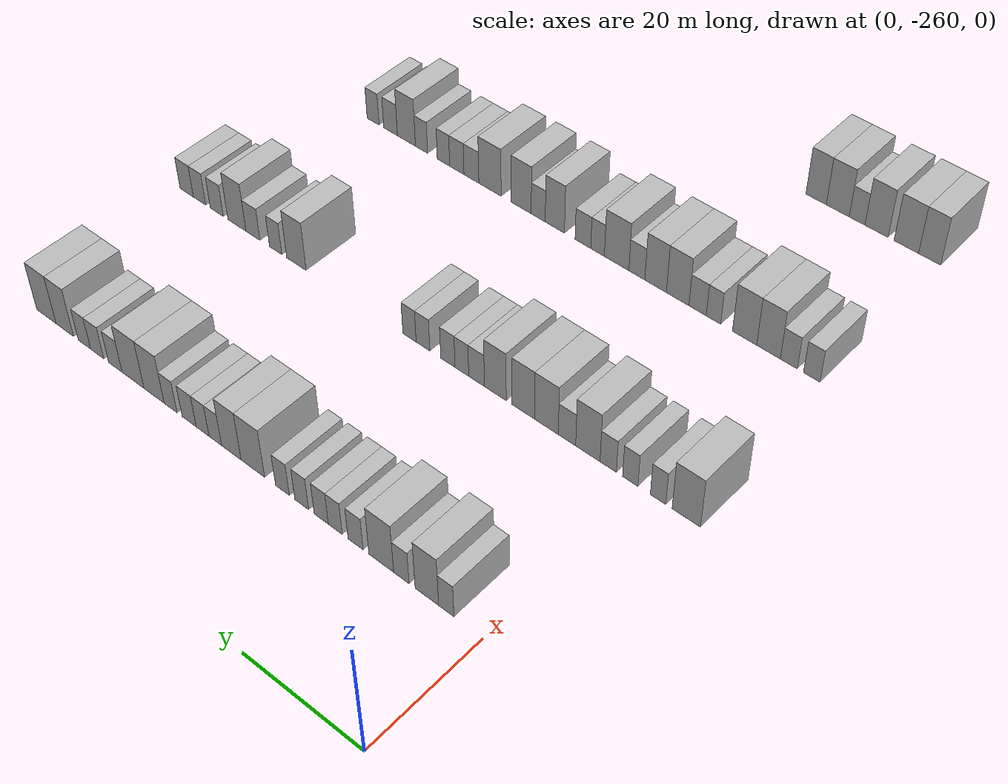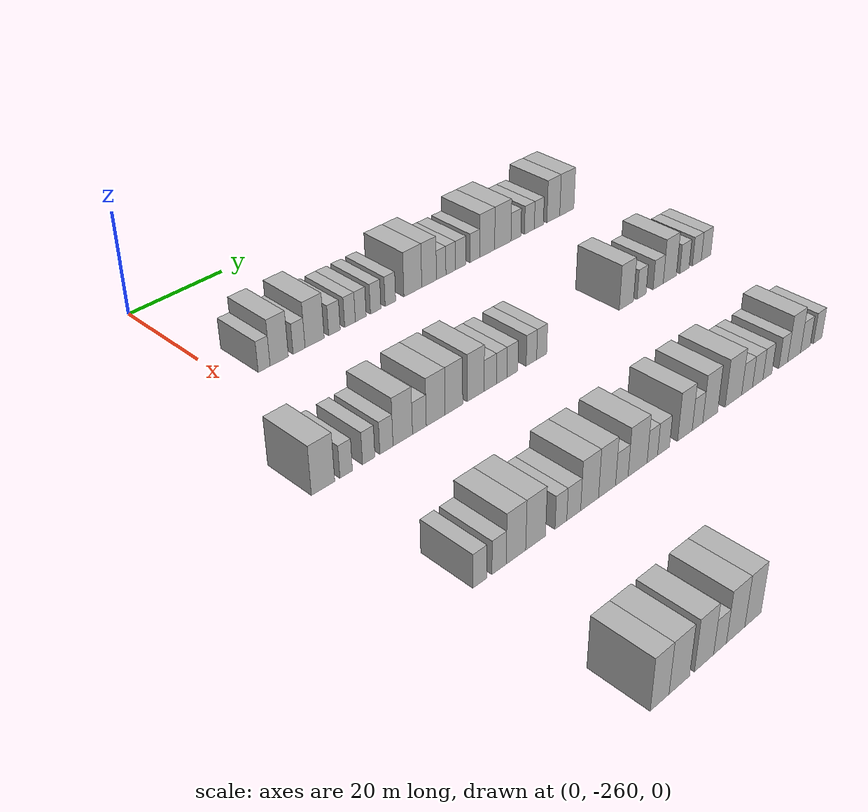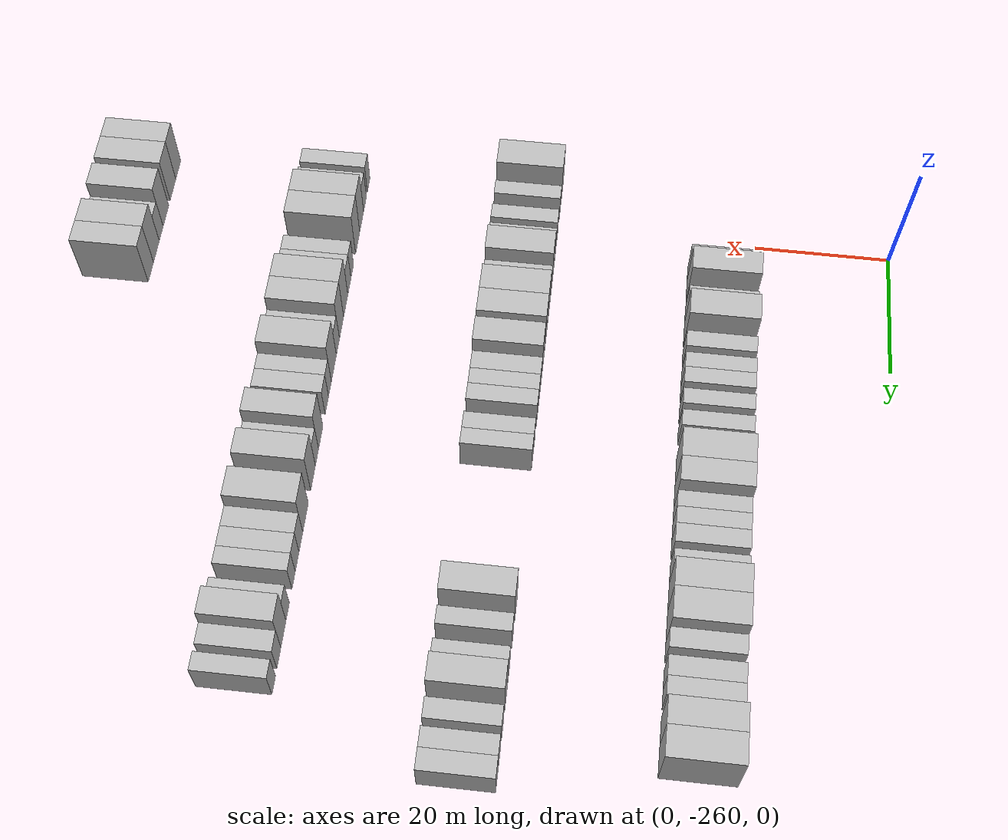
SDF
<sdf version="1.6">
 <world name="default">
  <model name="building_51">
   <static>1</static>
   <pose>25.0000 -254.0717 0 0.000000 0.000000 0.000000</pose>
   <link name="link">
    <pose>0 0 3.00 0 0 0</pose>
    <collision name="collision"><geometry><box><size>10.0000 2.4786 6.0000</size></box></geometry></collision>
    <visual name="visual">
     <cast_shadows>0</cast_shadows>
     <geometry><box><size>10.0000 2.4786 6.0000</size></box></geometry>
     <material>
      <script>
       <uri>model://HANNAS_wall/materials/scripts</uri>
       <uri>model://HANNAS_wall/materials/textures</uri>
       <name>vrc/HANNAS_wall</name>
      </script>
     </material>
    </visual>
   </link>
  </model>
  <model name="building_52">
   <static>1</static>
   <pose>25.0000 -250.9036 0 0.000000 0.000000 0.000000</pose>
   <link name="link">
    <pose>0 0 4.50 0 0 0</pose>
    <collision name="collision"><geometry><box><size>10.0000 3.8577 9.0000</size></box></geometry></collision>
    <visual name="visual">
     <cast_shadows>0</cast_shadows>
     <geometry><box><size>10.0000 3.8577 9.0000</size></box></geometry>
     <material>
      <script>
       <uri>model://HANNAS_wall/materials/scripts</uri>
       <uri>model://HANNAS_wall/materials/textures</uri>
       <name>vrc/HANNAS_wall</name>
      </script>
     </material>
    </visual>
   </link>
  </model>
  <model name="building_53">
   <static>1</static>
   <pose>25.0000 -246.6851 0 0.000000 0.000000 0.000000</pose>
   <link name="link">
    <pose>0 0 3.00 0 0 0</pose>
    <collision name="collision"><geometry><box><size>10.0000 2.5791 6.0000</size></box></geometry></collision>
    <visual name="visual">
     <cast_shadows>0</cast_shadows>
     <geometry><box><size>10.0000 2.5791 6.0000</size></box></geometry>
     <material>
      <script>
       <uri>model://HANNAS_wall/materials/scripts</uri>
       <uri>model://HANNAS_wall/materials/textures</uri>
       <name>vrc/HANNAS_wall</name>
      </script>
     </material>
    </visual>
   </link>
  </model>
  <model name="building_54">
   <static>1</static>
   <pose>25.0000 -243.3000 0 0.000000 0.000000 0.000000</pose>
   <link name="link">
    <pose>0 0 4.50 0 0 0</pose>
    <collision name="collision"><geometry><box><size>10.0000 4.1912 9.0000</size></box></geometry></collision>
    <visual name="visual">
     <cast_shadows>0</cast_shadows>
     <geometry><box><size>10.0000 4.1912 9.0000</size></box></geometry>
     <material>
      <script>
       <uri>model://HANNAS_wall/materials/scripts</uri>
       <uri>model://HANNAS_wall/materials/textures</uri>
       <name>vrc/HANNAS_wall</name>
      </script>
     </material>
    </visual>
   </link>
  </model>
  <model name="building_55">
   <static>1</static>
   <pose>25.0000 -238.9054 0 0.000000 0.000000 0.000000</pose>
   <link name="link">
    <pose>0 0 3.00 0 0 0</pose>
    <collision name="collision"><geometry><box><size>10.0000 2.5979 6.0000</size></box></geometry></collision>
    <visual name="visual">
     <cast_shadows>0</cast_shadows>
     <geometry><box><size>10.0000 2.5979 6.0000</size></box></geometry>
     <material>
      <script>
       <uri>model://HANNAS_wall/materials/scripts</uri>
       <uri>model://HANNAS_wall/materials/textures</uri>
       <name>vrc/HANNAS_wall</name>
      </script>
     </material>
    </visual>
   </link>
  </model>
  <model name="building_56">
   <static>1</static>
   <pose>25.0000 -235.3867 0 0.000000 0.000000 0.000000</pose>
   <link name="link">
    <pose>0 0 3.00 0 0 0</pose>
    <collision name="collision"><geometry><box><size>10.0000 2.4397 6.0000</size></box></geometry></collision>
    <visual name="visual">
     <cast_shadows>0</cast_shadows>
     <geometry><box><size>10.0000 2.4397 6.0000</size></box></geometry>
     <material>
      <script>
       <uri>model://HANNAS_wall/materials/scripts</uri>
       <uri>model://HANNAS_wall/materials/textures</uri>
       <name>vrc/HANNAS_wall</name>
      </script>
     </material>
    </visual>
   </link>
  </model>
  <model name="building_57">
   <static>1</static>
   <pose>25.0000 -232.9198 0 0.000000 0.000000 0.000000</pose>
   <link name="link">
    <pose>0 0 3.00 0 0 0</pose>
    <collision name="collision"><geometry><box><size>10.0000 2.4940 6.0000</size></box></geometry></collision>
    <visual name="visual">
     <cast_shadows>0</cast_shadows>
     <geometry><box><size>10.0000 2.4940 6.0000</size></box></geometry>
     <material>
      <script>
       <uri>model://HANNAS_wall/materials/scripts</uri>
       <uri>model://HANNAS_wall/materials/textures</uri>
       <name>vrc/HANNAS_wall</name>
      </script>
     </material>
    </visual>
   </link>
  </model>
  <model name="building_58">
   <static>1</static>
   <pose>25.0000 -229.4423 0 0.000000 0.000000 0.000000</pose>
   <link name="link">
    <pose>0 0 3.00 0 0 0</pose>
    <collision name="collision"><geometry><box><size>10.0000 2.4610 6.0000</size></box></geometry></collision>
    <visual name="visual">
     <cast_shadows>0</cast_shadows>
     <geometry><box><size>10.0000 2.4610 6.0000</size></box></geometry>
     <material>
      <script>
       <uri>model://HANNAS_wall/materials/scripts</uri>
       <uri>model://HANNAS_wall/materials/textures</uri>
       <name>vrc/HANNAS_wall</name>
      </script>
     </material>
    </visual>
   </link>
  </model>
  <model name="building_59">
   <static>1</static>
   <pose>25.0000 -225.9578 0 0.000000 0.000000 0.000000</pose>
   <link name="link">
    <pose>0 0 3.00 0 0 0</pose>
    <collision name="collision"><geometry><box><size>10.0000 2.5080 6.0000</size></box></geometry></collision>
    <visual name="visual">
     <cast_shadows>0</cast_shadows>
     <geometry><box><size>10.0000 2.5080 6.0000</size></box></geometry>
     <material>
      <script>
       <uri>model://HANNAS_wall/materials/scripts</uri>
       <uri>model://HANNAS_wall/materials/textures</uri>
       <name>vrc/HANNAS_wall</name>
      </script>
     </material>
    </visual>
   </link>
  </model>
  <model name="building_60">
   <static>1</static>
   <pose>25.0000 -220.5133 0 0.000000 0.000000 0.000000</pose>
   <link name="link">
    <pose>0 0 4.50 0 0 0</pose>
    <collision name="collision"><geometry><box><size>10.0000 4.3810 9.0000</size></box></geometry></collision>
    <visual name="visual">
     <cast_shadows>0</cast_shadows>
     <geometry><box><size>10.0000 4.3810 9.0000</size></box></geometry>
     <material>
      <script>
       <uri>model://HANNAS_wall/materials/scripts</uri>
       <uri>model://HANNAS_wall/materials/textures</uri>
       <name>vrc/HANNAS_wall</name>
      </script>
     </material>
    </visual>
   </link>
  </model>
  <model name="building_61">
   <static>1</static>
   <pose>25.0000 -216.4839 0 0.000000 0.000000 0.000000</pose>
   <link name="link">
    <pose>0 0 4.50 0 0 0</pose>
    <collision name="collision"><geometry><box><size>10.0000 3.6778 9.0000</size></box></geometry></collision>
    <visual name="visual">
     <cast_shadows>0</cast_shadows>
     <geometry><box><size>10.0000 3.6778 9.0000</size></box></geometry>
     <material>
      <script>
       <uri>model://HANNAS_wall/materials/scripts</uri>
       <uri>model://HANNAS_wall/materials/textures</uri>
       <name>vrc/HANNAS_wall</name>
      </script>
     </material>
    </visual>
   </link>
  </model>
  <model name="building_62">
   <static>1</static>
   <pose>25.0000 -213.4449 0 0.000000 0.000000 0.000000</pose>
   <link name="link">
    <pose>0 0 3.00 0 0 0</pose>
    <collision name="collision"><geometry><box><size>10.0000 2.4002 6.0000</size></box></geometry></collision>
    <visual name="visual">
     <cast_shadows>0</cast_shadows>
     <geometry><box><size>10.0000 2.4002 6.0000</size></box></geometry>
     <material>
      <script>
       <uri>model://HANNAS_wall/materials/scripts</uri>
       <uri>model://HANNAS_wall/materials/textures</uri>
       <name>vrc/HANNAS_wall</name>
      </script>
     </material>
    </visual>
   </link>
  </model>
  <model name="building_63">
   <static>1</static>
   <pose>25.0000 -211.0081 0 0.000000 0.000000 0.000000</pose>
   <link name="link">
    <pose>0 0 3.00 0 0 0</pose>
    <collision name="collision"><geometry><box><size>10.0000 2.4734 6.0000</size></box></geometry></collision>
    <visual name="visual">
     <cast_shadows>0</cast_shadows>
     <geometry><box><size>10.0000 2.4734 6.0000</size></box></geometry>
     <material>
      <script>
       <uri>model://HANNAS_wall/materials/scripts</uri>
       <uri>model://HANNAS_wall/materials/textures</uri>
       <name>vrc/HANNAS_wall</name>
      </script>
     </material>
    </visual>
   </link>
  </model>
  <model name="building_64">
   <static>1</static>
   <pose>25.0000 -208.3993 0 0.000000 0.000000 0.000000</pose>
   <link name="link">
    <pose>0 0 3.00 0 0 0</pose>
    <collision name="collision"><geometry><box><size>10.0000 2.7443 6.0000</size></box></geometry></collision>
    <visual name="visual">
     <cast_shadows>0</cast_shadows>
     <geometry><box><size>10.0000 2.7443 6.0000</size></box></geometry>
     <material>
      <script>
       <uri>model://HANNAS_wall/materials/scripts</uri>
       <uri>model://HANNAS_wall/materials/textures</uri>
       <name>vrc/HANNAS_wall</name>
      </script>
     </material>
    </visual>
   </link>
  </model>
  <model name="building_65">
   <static>1</static>
   <pose>25.0000 -204.7538 0 0.000000 0.000000 0.000000</pose>
   <link name="link">
    <pose>0 0 3.00 0 0 0</pose>
    <collision name="collision"><geometry><box><size>10.0000 2.5466 6.0000</size></box></geometry></collision>
    <visual name="visual">
     <cast_shadows>0</cast_shadows>
     <geometry><box><size>10.0000 2.5466 6.0000</size></box></geometry>
     <material>
      <script>
       <uri>model://HANNAS_wall/materials/scripts</uri>
       <uri>model://HANNAS_wall/materials/textures</uri>
       <name>vrc/HANNAS_wall</name>
      </script>
     </material>
    </visual>
   </link>
  </model>
  <model name="building_66">
   <static>1</static>
   <pose>25.0000 -201.4581 0 0.000000 0.000000 0.000000</pose>
   <link name="link">
    <pose>0 0 4.50 0 0 0</pose>
    <collision name="collision"><geometry><box><size>10.0000 4.0447 9.0000</size></box></geometry></collision>
    <visual name="visual">
     <cast_shadows>0</cast_shadows>
     <geometry><box><size>10.0000 4.0447 9.0000</size></box></geometry>
     <material>
      <script>
       <uri>model://HANNAS_wall/materials/scripts</uri>
       <uri>model://HANNAS_wall/materials/textures</uri>
       <name>vrc/HANNAS_wall</name>
      </script>
     </material>
    </visual>
   </link>
  </model>
  <model name="building_67">
   <static>1</static>
   <pose>25.0000 -197.2024 0 0.000000 0.000000 0.000000</pose>
   <link name="link">
    <pose>0 0 4.50 0 0 0</pose>
    <collision name="collision"><geometry><box><size>10.0000 4.4668 9.0000</size></box></geometry></collision>
    <visual name="visual">
     <cast_shadows>0</cast_shadows>
     <geometry><box><size>10.0000 4.4668 9.0000</size></box></geometry>
     <material>
      <script>
       <uri>model://HANNAS_wall/materials/scripts</uri>
       <uri>model://HANNAS_wall/materials/textures</uri>
       <name>vrc/HANNAS_wall</name>
      </script>
     </material>
    </visual>
   </link>
  </model>
  <model name="building_68">
   <static>1</static>
   <pose>25.0000 -193.5840 0 0.000000 0.000000 0.000000</pose>
   <link name="link">
    <pose>0 0 3.00 0 0 0</pose>
    <collision name="collision"><geometry><box><size>10.0000 2.7699 6.0000</size></box></geometry></collision>
    <visual name="visual">
     <cast_shadows>0</cast_shadows>
     <geometry><box><size>10.0000 2.7699 6.0000</size></box></geometry>
     <material>
      <script>
       <uri>model://HANNAS_wall/materials/scripts</uri>
       <uri>model://HANNAS_wall/materials/textures</uri>
       <name>vrc/HANNAS_wall</name>
      </script>
     </material>
    </visual>
   </link>
  </model>
  <model name="building_69">
   <static>1</static>
   <pose>25.0000 -189.8142 0 0.000000 0.000000 0.000000</pose>
   <link name="link">
    <pose>0 0 3.00 0 0 0</pose>
    <collision name="collision"><geometry><box><size>10.0000 2.7697 6.0000</size></box></geometry></collision>
    <visual name="visual">
     <cast_shadows>0</cast_shadows>
     <geometry><box><size>10.0000 2.7697 6.0000</size></box></geometry>
     <material>
      <script>
       <uri>model://HANNAS_wall/materials/scripts</uri>
       <uri>model://HANNAS_wall/materials/textures</uri>
       <name>vrc/HANNAS_wall</name>
      </script>
     </material>
    </visual>
   </link>
  </model>
  <model name="building_70">
   <static>1</static>
   <pose>25.0000 -187.1320 0 0.000000 0.000000 0.000000</pose>
   <link name="link">
    <pose>0 0 3.00 0 0 0</pose>
    <collision name="collision"><geometry><box><size>10.0000 2.5948 6.0000</size></box></geometry></collision>
    <visual name="visual">
     <cast_shadows>0</cast_shadows>
     <geometry><box><size>10.0000 2.5948 6.0000</size></box></geometry>
     <material>
      <script>
       <uri>model://HANNAS_wall/materials/scripts</uri>
       <uri>model://HANNAS_wall/materials/textures</uri>
       <name>vrc/HANNAS_wall</name>
      </script>
     </material>
    </visual>
   </link>
  </model>
  <model name="building_71">
   <static>1</static>
   <pose>25.0000 -182.9568 0 0.000000 0.000000 0.000000</pose>
   <link name="link">
    <pose>0 0 4.50 0 0 0</pose>
    <collision name="collision"><geometry><box><size>10.0000 3.7555 9.0000</size></box></geometry></collision>
    <visual name="visual">
     <cast_shadows>0</cast_shadows>
     <geometry><box><size>10.0000 3.7555 9.0000</size></box></geometry>
     <material>
      <script>
       <uri>model://HANNAS_wall/materials/scripts</uri>
       <uri>model://HANNAS_wall/materials/textures</uri>
       <name>vrc/HANNAS_wall</name>
      </script>
     </material>
    </visual>
   </link>
  </model>
  <model name="building_72">
   <static>1</static>
   <pose>25.0000 -178.9845 0 0.000000 0.000000 0.000000</pose>
   <link name="link">
    <pose>0 0 4.50 0 0 0</pose>
    <collision name="collision"><geometry><box><size>10.0000 4.1891 9.0000</size></box></geometry></collision>
    <visual name="visual">
     <cast_shadows>0</cast_shadows>
     <geometry><box><size>10.0000 4.1891 9.0000</size></box></geometry>
     <material>
      <script>
       <uri>model://HANNAS_wall/materials/scripts</uri>
       <uri>model://HANNAS_wall/materials/textures</uri>
       <name>vrc/HANNAS_wall</name>
      </script>
     </material>
    </visual>
   </link>
  </model>
  <model name="building_276">
   <static>1</static>
   <pose>55.0000 -267.1227 0 0.000000 0.000000 0.000000</pose>
   <link name="link">
    <pose>0 0 4.50 0 0 0</pose>
    <collision name="collision"><geometry><box><size>10.0000 4.4571 9.0000</size></box></geometry></collision>
    <visual name="visual">
     <cast_shadows>0</cast_shadows>
     <geometry><box><size>10.0000 4.4571 9.0000</size></box></geometry>
     <material>
      <script>
       <uri>model://HANNAS_wall/materials/scripts</uri>
       <uri>model://HANNAS_wall/materials/textures</uri>
       <name>vrc/HANNAS_wall</name>
      </script>
     </material>
    </visual>
   </link>
  </model>
  <model name="building_277">
   <static>1</static>
   <pose>55.0000 -262.6686 0 0.000000 0.000000 0.000000</pose>
   <link name="link">
    <pose>0 0 3.00 0 0 0</pose>
    <collision name="collision"><geometry><box><size>10.0000 2.4511 6.0000</size></box></geometry></collision>
    <visual name="visual">
     <cast_shadows>0</cast_shadows>
     <geometry><box><size>10.0000 2.4511 6.0000</size></box></geometry>
     <material>
      <script>
       <uri>model://HANNAS_wall/materials/scripts</uri>
       <uri>model://HANNAS_wall/materials/textures</uri>
       <name>vrc/HANNAS_wall</name>
      </script>
     </material>
    </visual>
   </link>
  </model>
  <model name="building_278">
   <static>1</static>
   <pose>55.0000 -258.1964 0 0.000000 0.000000 0.000000</pose>
   <link name="link">
    <pose>0 0 3.00 0 0 0</pose>
    <collision name="collision"><geometry><box><size>10.0000 2.4932 6.0000</size></box></geometry></collision>
    <visual name="visual">
     <cast_shadows>0</cast_shadows>
     <geometry><box><size>10.0000 2.4932 6.0000</size></box></geometry>
     <material>
      <script>
       <uri>model://HANNAS_wall/materials/scripts</uri>
       <uri>model://HANNAS_wall/materials/textures</uri>
       <name>vrc/HANNAS_wall</name>
      </script>
     </material>
    </visual>
   </link>
  </model>
  <model name="building_279">
   <static>1</static>
   <pose>55.0000 -254.6008 0 0.000000 0.000000 0.000000</pose>
   <link name="link">
    <pose>0 0 3.00 0 0 0</pose>
    <collision name="collision"><geometry><box><size>10.0000 2.6980 6.0000</size></box></geometry></collision>
    <visual name="visual">
     <cast_shadows>0</cast_shadows>
     <geometry><box><size>10.0000 2.6980 6.0000</size></box></geometry>
     <material>
      <script>
       <uri>model://HANNAS_wall/materials/scripts</uri>
       <uri>model://HANNAS_wall/materials/textures</uri>
       <name>vrc/HANNAS_wall</name>
      </script>
     </material>
    </visual>
   </link>
  </model>
  <model name="building_280">
   <static>1</static>
   <pose>55.0000 -251.2183 0 0.000000 0.000000 0.000000</pose>
   <link name="link">
    <pose>0 0 4.50 0 0 0</pose>
    <collision name="collision"><geometry><box><size>10.0000 4.0670 9.0000</size></box></geometry></collision>
    <visual name="visual">
     <cast_shadows>0</cast_shadows>
     <geometry><box><size>10.0000 4.0670 9.0000</size></box></geometry>
     <material>
      <script>
       <uri>model://HANNAS_wall/materials/scripts</uri>
       <uri>model://HANNAS_wall/materials/textures</uri>
       <name>vrc/HANNAS_wall</name>
      </script>
     </material>
    </visual>
   </link>
  </model>
  <model name="building_281">
   <static>1</static>
   <pose>55.0000 -247.7169 0 0.000000 0.000000 0.000000</pose>
   <link name="link">
    <pose>0 0 3.00 0 0 0</pose>
    <collision name="collision"><geometry><box><size>10.0000 2.9358 6.0000</size></box></geometry></collision>
    <visual name="visual">
     <cast_shadows>0</cast_shadows>
     <geometry><box><size>10.0000 2.9358 6.0000</size></box></geometry>
     <material>
      <script>
       <uri>model://HANNAS_wall/materials/scripts</uri>
       <uri>model://HANNAS_wall/materials/textures</uri>
       <name>vrc/HANNAS_wall</name>
      </script>
     </material>
    </visual>
   </link>
  </model>
  <model name="building_282">
   <static>1</static>
   <pose>55.0000 -244.2070 0 0.000000 0.000000 0.000000</pose>
   <link name="link">
    <pose>0 0 4.50 0 0 0</pose>
    <collision name="collision"><geometry><box><size>10.0000 4.0842 9.0000</size></box></geometry></collision>
    <visual name="visual">
     <cast_shadows>0</cast_shadows>
     <geometry><box><size>10.0000 4.0842 9.0000</size></box></geometry>
     <material>
      <script>
       <uri>model://HANNAS_wall/materials/scripts</uri>
       <uri>model://HANNAS_wall/materials/textures</uri>
       <name>vrc/HANNAS_wall</name>
      </script>
     </material>
    </visual>
   </link>
  </model>
  <model name="building_283">
   <static>1</static>
   <pose>55.0000 -240.2123 0 0.000000 0.000000 0.000000</pose>
   <link name="link">
    <pose>0 0 4.50 0 0 0</pose>
    <collision name="collision"><geometry><box><size>10.0000 3.9052 9.0000</size></box></geometry></collision>
    <visual name="visual">
     <cast_shadows>0</cast_shadows>
     <geometry><box><size>10.0000 3.9052 9.0000</size></box></geometry>
     <material>
      <script>
       <uri>model://HANNAS_wall/materials/scripts</uri>
       <uri>model://HANNAS_wall/materials/textures</uri>
       <name>vrc/HANNAS_wall</name>
      </script>
     </material>
    </visual>
   </link>
  </model>
  <model name="building_284">
   <static>1</static>
   <pose>55.0000 -235.3252 0 0.000000 0.000000 0.000000</pose>
   <link name="link">
    <pose>0 0 4.50 0 0 0</pose>
    <collision name="collision"><geometry><box><size>10.0000 3.8689 9.0000</size></box></geometry></collision>
    <visual name="visual">
     <cast_shadows>0</cast_shadows>
     <geometry><box><size>10.0000 3.8689 9.0000</size></box></geometry>
     <material>
      <script>
       <uri>model://HANNAS_wall/materials/scripts</uri>
       <uri>model://HANNAS_wall/materials/textures</uri>
       <name>vrc/HANNAS_wall</name>
      </script>
     </material>
    </visual>
   </link>
  </model>
  <model name="building_285">
   <static>1</static>
   <pose>55.0000 -231.9789 0 0.000000 0.000000 0.000000</pose>
   <link name="link">
    <pose>0 0 3.00 0 0 0</pose>
    <collision name="collision"><geometry><box><size>10.0000 2.8236 6.0000</size></box></geometry></collision>
    <visual name="visual">
     <cast_shadows>0</cast_shadows>
     <geometry><box><size>10.0000 2.8236 6.0000</size></box></geometry>
     <material>
      <script>
       <uri>model://HANNAS_wall/materials/scripts</uri>
       <uri>model://HANNAS_wall/materials/textures</uri>
       <name>vrc/HANNAS_wall</name>
      </script>
     </material>
    </visual>
   </link>
  </model>
  <model name="building_286">
   <static>1</static>
   <pose>55.0000 -229.3290 0 0.000000 0.000000 0.000000</pose>
   <link name="link">
    <pose>0 0 3.00 0 0 0</pose>
    <collision name="collision"><geometry><box><size>10.0000 2.4763 6.0000</size></box></geometry></collision>
    <visual name="visual">
     <cast_shadows>0</cast_shadows>
     <geometry><box><size>10.0000 2.4763 6.0000</size></box></geometry>
     <material>
      <script>
       <uri>model://HANNAS_wall/materials/scripts</uri>
       <uri>model://HANNAS_wall/materials/textures</uri>
       <name>vrc/HANNAS_wall</name>
      </script>
     </material>
    </visual>
   </link>
  </model>
  <model name="building_287">
   <static>1</static>
   <pose>55.0000 -226.7826 0 0.000000 0.000000 0.000000</pose>
   <link name="link">
    <pose>0 0 3.00 0 0 0</pose>
    <collision name="collision"><geometry><box><size>10.0000 2.6165 6.0000</size></box></geometry></collision>
    <visual name="visual">
     <cast_shadows>0</cast_shadows>
     <geometry><box><size>10.0000 2.6165 6.0000</size></box></geometry>
     <material>
      <script>
       <uri>model://HANNAS_wall/materials/scripts</uri>
       <uri>model://HANNAS_wall/materials/textures</uri>
       <name>vrc/HANNAS_wall</name>
      </script>
     </material>
    </visual>
   </link>
  </model>
  <model name="building_288">
   <static>1</static>
   <pose>55.0000 -222.1967 0 0.000000 0.000000 0.000000</pose>
   <link name="link">
    <pose>0 0 3.00 0 0 0</pose>
    <collision name="collision"><geometry><box><size>10.0000 2.5551 6.0000</size></box></geometry></collision>
    <visual name="visual">
     <cast_shadows>0</cast_shadows>
     <geometry><box><size>10.0000 2.5551 6.0000</size></box></geometry>
     <material>
      <script>
       <uri>model://HANNAS_wall/materials/scripts</uri>
       <uri>model://HANNAS_wall/materials/textures</uri>
       <name>vrc/HANNAS_wall</name>
      </script>
     </material>
    </visual>
   </link>
  </model>
  <model name="building_289">
   <static>1</static>
   <pose>55.0000 -219.6737 0 0.000000 0.000000 0.000000</pose>
   <link name="link">
    <pose>0 0 3.00 0 0 0</pose>
    <collision name="collision"><geometry><box><size>10.0000 2.4909 6.0000</size></box></geometry></collision>
    <visual name="visual">
     <cast_shadows>0</cast_shadows>
     <geometry><box><size>10.0000 2.4909 6.0000</size></box></geometry>
     <material>
      <script>
       <uri>model://HANNAS_wall/materials/scripts</uri>
       <uri>model://HANNAS_wall/materials/textures</uri>
       <name>vrc/HANNAS_wall</name>
      </script>
     </material>
    </visual>
   </link>
  </model>
  <model name="building_290">
   <static>1</static>
   <pose>55.0000 -197.5085 0 0.000000 0.000000 0.000000</pose>
   <link name="link">
    <pose>0 0 4.50 0 0 0</pose>
    <collision name="collision"><geometry><box><size>10.0000 3.9465 9.0000</size></box></geometry></collision>
    <visual name="visual">
     <cast_shadows>0</cast_shadows>
     <geometry><box><size>10.0000 3.9465 9.0000</size></box></geometry>
     <material>
      <script>
       <uri>model://HANNAS_wall/materials/scripts</uri>
       <uri>model://HANNAS_wall/materials/textures</uri>
       <name>vrc/HANNAS_wall</name>
      </script>
     </material>
    </visual>
   </link>
  </model>
  <model name="building_291">
   <static>1</static>
   <pose>55.0000 -193.2671 0 0.000000 0.000000 0.000000</pose>
   <link name="link">
    <pose>0 0 3.00 0 0 0</pose>
    <collision name="collision"><geometry><box><size>10.0000 2.5364 6.0000</size></box></geometry></collision>
    <visual name="visual">
     <cast_shadows>0</cast_shadows>
     <geometry><box><size>10.0000 2.5364 6.0000</size></box></geometry>
     <material>
      <script>
       <uri>model://HANNAS_wall/materials/scripts</uri>
       <uri>model://HANNAS_wall/materials/textures</uri>
       <name>vrc/HANNAS_wall</name>
      </script>
     </material>
    </visual>
   </link>
  </model>
  <model name="building_292">
   <static>1</static>
   <pose>55.0000 -188.5301 0 0.000000 0.000000 0.000000</pose>
   <link name="link">
    <pose>0 0 3.00 0 0 0</pose>
    <collision name="collision"><geometry><box><size>10.0000 2.9375 6.0000</size></box></geometry></collision>
    <visual name="visual">
     <cast_shadows>0</cast_shadows>
     <geometry><box><size>10.0000 2.9375 6.0000</size></box></geometry>
     <material>
      <script>
       <uri>model://HANNAS_wall/materials/scripts</uri>
       <uri>model://HANNAS_wall/materials/textures</uri>
       <name>vrc/HANNAS_wall</name>
      </script>
     </material>
    </visual>
   </link>
  </model>
  <model name="building_293">
   <static>1</static>
   <pose>55.0000 -185.1422 0 0.000000 0.000000 0.000000</pose>
   <link name="link">
    <pose>0 0 4.50 0 0 0</pose>
    <collision name="collision"><geometry><box><size>10.0000 3.8382 9.0000</size></box></geometry></collision>
    <visual name="visual">
     <cast_shadows>0</cast_shadows>
     <geometry><box><size>10.0000 3.8382 9.0000</size></box></geometry>
     <material>
      <script>
       <uri>model://HANNAS_wall/materials/scripts</uri>
       <uri>model://HANNAS_wall/materials/textures</uri>
       <name>vrc/HANNAS_wall</name>
      </script>
     </material>
    </visual>
   </link>
  </model>
  <model name="building_294">
   <static>1</static>
   <pose>55.0000 -180.8248 0 0.000000 0.000000 0.000000</pose>
   <link name="link">
    <pose>0 0 3.00 0 0 0</pose>
    <collision name="collision"><geometry><box><size>10.0000 2.7966 6.0000</size></box></geometry></collision>
    <visual name="visual">
     <cast_shadows>0</cast_shadows>
     <geometry><box><size>10.0000 2.7966 6.0000</size></box></geometry>
     <material>
      <script>
       <uri>model://HANNAS_wall/materials/scripts</uri>
       <uri>model://HANNAS_wall/materials/textures</uri>
       <name>vrc/HANNAS_wall</name>
      </script>
     </material>
    </visual>
   </link>
  </model>
  <model name="building_295">
   <static>1</static>
   <pose>55.0000 -177.0702 0 0.000000 0.000000 0.000000</pose>
   <link name="link">
    <pose>0 0 3.00 0 0 0</pose>
    <collision name="collision"><geometry><box><size>10.0000 2.7127 6.0000</size></box></geometry></collision>
    <visual name="visual">
     <cast_shadows>0</cast_shadows>
     <geometry><box><size>10.0000 2.7127 6.0000</size></box></geometry>
     <material>
      <script>
       <uri>model://HANNAS_wall/materials/scripts</uri>
       <uri>model://HANNAS_wall/materials/textures</uri>
       <name>vrc/HANNAS_wall</name>
      </script>
     </material>
    </visual>
   </link>
  </model>
  <model name="building_296">
   <static>1</static>
   <pose>55.0000 -174.2528 0 0.000000 0.000000 0.000000</pose>
   <link name="link">
    <pose>0 0 3.00 0 0 0</pose>
    <collision name="collision"><geometry><box><size>10.0000 2.9220 6.0000</size></box></geometry></collision>
    <visual name="visual">
     <cast_shadows>0</cast_shadows>
     <geometry><box><size>10.0000 2.9220 6.0000</size></box></geometry>
     <material>
      <script>
       <uri>model://HANNAS_wall/materials/scripts</uri>
       <uri>model://HANNAS_wall/materials/textures</uri>
       <name>vrc/HANNAS_wall</name>
      </script>
     </material>
    </visual>
   </link>
  </model>
  <model name="building_513">
   <static>1</static>
   <pose>85.0000 -265.3450 0 0.000000 0.000000 0.000000</pose>
   <link name="link">
    <pose>0 0 3.00 0 0 0</pose>
    <collision name="collision"><geometry><box><size>10.0000 2.6621 6.0000</size></box></geometry></collision>
    <visual name="visual">
     <cast_shadows>0</cast_shadows>
     <geometry><box><size>10.0000 2.6621 6.0000</size></box></geometry>
     <material>
      <script>
       <uri>model://HANNAS_wall/materials/scripts</uri>
       <uri>model://HANNAS_wall/materials/textures</uri>
       <name>vrc/HANNAS_wall</name>
      </script>
     </material>
    </visual>
   </link>
  </model>
  <model name="building_514">
   <static>1</static>
   <pose>85.0000 -261.6181 0 0.000000 0.000000 0.000000</pose>
   <link name="link">
    <pose>0 0 3.00 0 0 0</pose>
    <collision name="collision"><geometry><box><size>10.0000 2.7918 6.0000</size></box></geometry></collision>
    <visual name="visual">
     <cast_shadows>0</cast_shadows>
     <geometry><box><size>10.0000 2.7918 6.0000</size></box></geometry>
     <material>
      <script>
       <uri>model://HANNAS_wall/materials/scripts</uri>
       <uri>model://HANNAS_wall/materials/textures</uri>
       <name>vrc/HANNAS_wall</name>
      </script>
     </material>
    </visual>
   </link>
  </model>
  <model name="building_515">
   <static>1</static>
   <pose>85.0000 -258.2617 0 0.000000 0.000000 0.000000</pose>
   <link name="link">
    <pose>0 0 4.50 0 0 0</pose>
    <collision name="collision"><geometry><box><size>10.0000 3.9209 9.0000</size></box></geometry></collision>
    <visual name="visual">
     <cast_shadows>0</cast_shadows>
     <geometry><box><size>10.0000 3.9209 9.0000</size></box></geometry>
     <material>
      <script>
       <uri>model://HANNAS_wall/materials/scripts</uri>
       <uri>model://HANNAS_wall/materials/textures</uri>
       <name>vrc/HANNAS_wall</name>
      </script>
     </material>
    </visual>
   </link>
  </model>
  <model name="building_516">
   <static>1</static>
   <pose>85.0000 -254.2638 0 0.000000 0.000000 0.000000</pose>
   <link name="link">
    <pose>0 0 4.50 0 0 0</pose>
    <collision name="collision"><geometry><box><size>10.0000 4.0749 9.0000</size></box></geometry></collision>
    <visual name="visual">
     <cast_shadows>0</cast_shadows>
     <geometry><box><size>10.0000 4.0749 9.0000</size></box></geometry>
     <material>
      <script>
       <uri>model://HANNAS_wall/materials/scripts</uri>
       <uri>model://HANNAS_wall/materials/textures</uri>
       <name>vrc/HANNAS_wall</name>
      </script>
     </material>
    </visual>
   </link>
  </model>
  <model name="building_517">
   <static>1</static>
   <pose>85.0000 -248.9813 0 0.000000 0.000000 0.000000</pose>
   <link name="link">
    <pose>0 0 3.00 0 0 0</pose>
    <collision name="collision"><geometry><box><size>10.0000 2.4901 6.0000</size></box></geometry></collision>
    <visual name="visual">
     <cast_shadows>0</cast_shadows>
     <geometry><box><size>10.0000 2.4901 6.0000</size></box></geometry>
     <material>
      <script>
       <uri>model://HANNAS_wall/materials/scripts</uri>
       <uri>model://HANNAS_wall/materials/textures</uri>
       <name>vrc/HANNAS_wall</name>
      </script>
     </material>
    </visual>
   </link>
  </model>
  <model name="building_518">
   <static>1</static>
   <pose>85.0000 -246.2364 0 0.000000 0.000000 0.000000</pose>
   <link name="link">
    <pose>0 0 3.00 0 0 0</pose>
    <collision name="collision"><geometry><box><size>10.0000 2.9997 6.0000</size></box></geometry></collision>
    <visual name="visual">
     <cast_shadows>0</cast_shadows>
     <geometry><box><size>10.0000 2.9997 6.0000</size></box></geometry>
     <material>
      <script>
       <uri>model://HANNAS_wall/materials/scripts</uri>
       <uri>model://HANNAS_wall/materials/textures</uri>
       <name>vrc/HANNAS_wall</name>
      </script>
     </material>
    </visual>
   </link>
  </model>
  <model name="building_519">
   <static>1</static>
   <pose>85.0000 -242.7581 0 0.000000 0.000000 0.000000</pose>
   <link name="link">
    <pose>0 0 4.50 0 0 0</pose>
    <collision name="collision"><geometry><box><size>10.0000 3.9570 9.0000</size></box></geometry></collision>
    <visual name="visual">
     <cast_shadows>0</cast_shadows>
     <geometry><box><size>10.0000 3.9570 9.0000</size></box></geometry>
     <material>
      <script>
       <uri>model://HANNAS_wall/materials/scripts</uri>
       <uri>model://HANNAS_wall/materials/textures</uri>
       <name>vrc/HANNAS_wall</name>
      </script>
     </material>
    </visual>
   </link>
  </model>
  <model name="building_520">
   <static>1</static>
   <pose>85.0000 -238.8567 0 0.000000 0.000000 0.000000</pose>
   <link name="link">
    <pose>0 0 4.50 0 0 0</pose>
    <collision name="collision"><geometry><box><size>10.0000 3.8458 9.0000</size></box></geometry></collision>
    <visual name="visual">
     <cast_shadows>0</cast_shadows>
     <geometry><box><size>10.0000 3.8458 9.0000</size></box></geometry>
     <material>
      <script>
       <uri>model://HANNAS_wall/materials/scripts</uri>
       <uri>model://HANNAS_wall/materials/textures</uri>
       <name>vrc/HANNAS_wall</name>
      </script>
     </material>
    </visual>
   </link>
  </model>
  <model name="building_521">
   <static>1</static>
   <pose>85.0000 -235.4915 0 0.000000 0.000000 0.000000</pose>
   <link name="link">
    <pose>0 0 3.00 0 0 0</pose>
    <collision name="collision"><geometry><box><size>10.0000 2.8845 6.0000</size></box></geometry></collision>
    <visual name="visual">
     <cast_shadows>0</cast_shadows>
     <geometry><box><size>10.0000 2.8845 6.0000</size></box></geometry>
     <material>
      <script>
       <uri>model://HANNAS_wall/materials/scripts</uri>
       <uri>model://HANNAS_wall/materials/textures</uri>
       <name>vrc/HANNAS_wall</name>
      </script>
     </material>
    </visual>
   </link>
  </model>
  <model name="building_522">
   <static>1</static>
   <pose>85.0000 -231.8145 0 0.000000 0.000000 0.000000</pose>
   <link name="link">
    <pose>0 0 4.50 0 0 0</pose>
    <collision name="collision"><geometry><box><size>10.0000 4.4696 9.0000</size></box></geometry></collision>
    <visual name="visual">
     <cast_shadows>0</cast_shadows>
     <geometry><box><size>10.0000 4.4696 9.0000</size></box></geometry>
     <material>
      <script>
       <uri>model://HANNAS_wall/materials/scripts</uri>
       <uri>model://HANNAS_wall/materials/textures</uri>
       <name>vrc/HANNAS_wall</name>
      </script>
     </material>
    </visual>
   </link>
  </model>
  <model name="building_523">
   <static>1</static>
   <pose>85.0000 -228.3202 0 0.000000 0.000000 0.000000</pose>
   <link name="link">
    <pose>0 0 3.00 0 0 0</pose>
    <collision name="collision"><geometry><box><size>10.0000 2.5190 6.0000</size></box></geometry></collision>
    <visual name="visual">
     <cast_shadows>0</cast_shadows>
     <geometry><box><size>10.0000 2.5190 6.0000</size></box></geometry>
     <material>
      <script>
       <uri>model://HANNAS_wall/materials/scripts</uri>
       <uri>model://HANNAS_wall/materials/textures</uri>
       <name>vrc/HANNAS_wall</name>
      </script>
     </material>
    </visual>
   </link>
  </model>
  <model name="building_524">
   <static>1</static>
   <pose>85.0000 -225.6026 0 0.000000 0.000000 0.000000</pose>
   <link name="link">
    <pose>0 0 3.00 0 0 0</pose>
    <collision name="collision"><geometry><box><size>10.0000 2.9162 6.0000</size></box></geometry></collision>
    <visual name="visual">
     <cast_shadows>0</cast_shadows>
     <geometry><box><size>10.0000 2.9162 6.0000</size></box></geometry>
     <material>
      <script>
       <uri>model://HANNAS_wall/materials/scripts</uri>
       <uri>model://HANNAS_wall/materials/textures</uri>
       <name>vrc/HANNAS_wall</name>
      </script>
     </material>
    </visual>
   </link>
  </model>
  <model name="building_525">
   <static>1</static>
   <pose>85.0000 -220.3155 0 0.000000 0.000000 0.000000</pose>
   <link name="link">
    <pose>0 0 4.50 0 0 0</pose>
    <collision name="collision"><geometry><box><size>10.0000 3.6580 9.0000</size></box></geometry></collision>
    <visual name="visual">
     <cast_shadows>0</cast_shadows>
     <geometry><box><size>10.0000 3.6580 9.0000</size></box></geometry>
     <material>
      <script>
       <uri>model://HANNAS_wall/materials/scripts</uri>
       <uri>model://HANNAS_wall/materials/textures</uri>
       <name>vrc/HANNAS_wall</name>
      </script>
     </material>
    </visual>
   </link>
  </model>
  <model name="building_526">
   <static>1</static>
   <pose>85.0000 -217.1411 0 0.000000 0.000000 0.000000</pose>
   <link name="link">
    <pose>0 0 3.00 0 0 0</pose>
    <collision name="collision"><geometry><box><size>10.0000 2.6908 6.0000</size></box></geometry></collision>
    <visual name="visual">
     <cast_shadows>0</cast_shadows>
     <geometry><box><size>10.0000 2.6908 6.0000</size></box></geometry>
     <material>
      <script>
       <uri>model://HANNAS_wall/materials/scripts</uri>
       <uri>model://HANNAS_wall/materials/textures</uri>
       <name>vrc/HANNAS_wall</name>
      </script>
     </material>
    </visual>
   </link>
  </model>
  <model name="building_527">
   <static>1</static>
   <pose>85.0000 -213.8600 0 0.000000 0.000000 0.000000</pose>
   <link name="link">
    <pose>0 0 4.50 0 0 0</pose>
    <collision name="collision"><geometry><box><size>10.0000 3.8716 9.0000</size></box></geometry></collision>
    <visual name="visual">
     <cast_shadows>0</cast_shadows>
     <geometry><box><size>10.0000 3.8716 9.0000</size></box></geometry>
     <material>
      <script>
       <uri>model://HANNAS_wall/materials/scripts</uri>
       <uri>model://HANNAS_wall/materials/textures</uri>
       <name>vrc/HANNAS_wall</name>
      </script>
     </material>
    </visual>
   </link>
  </model>
  <model name="building_528">
   <static>1</static>
   <pose>85.0000 -207.7092 0 0.000000 0.000000 0.000000</pose>
   <link name="link">
    <pose>0 0 4.50 0 0 0</pose>
    <collision name="collision"><geometry><box><size>10.0000 4.4299 9.0000</size></box></geometry></collision>
    <visual name="visual">
     <cast_shadows>0</cast_shadows>
     <geometry><box><size>10.0000 4.4299 9.0000</size></box></geometry>
     <material>
      <script>
       <uri>model://HANNAS_wall/materials/scripts</uri>
       <uri>model://HANNAS_wall/materials/textures</uri>
       <name>vrc/HANNAS_wall</name>
      </script>
     </material>
    </visual>
   </link>
  </model>
  <model name="building_529">
   <static>1</static>
   <pose>85.0000 -204.0015 0 0.000000 0.000000 0.000000</pose>
   <link name="link">
    <pose>0 0 3.00 0 0 0</pose>
    <collision name="collision"><geometry><box><size>10.0000 2.9856 6.0000</size></box></geometry></collision>
    <visual name="visual">
     <cast_shadows>0</cast_shadows>
     <geometry><box><size>10.0000 2.9856 6.0000</size></box></geometry>
     <material>
      <script>
       <uri>model://HANNAS_wall/materials/scripts</uri>
       <uri>model://HANNAS_wall/materials/textures</uri>
       <name>vrc/HANNAS_wall</name>
      </script>
     </material>
    </visual>
   </link>
  </model>
  <model name="building_530">
   <static>1</static>
   <pose>85.0000 -201.0565 0 0.000000 0.000000 0.000000</pose>
   <link name="link">
    <pose>0 0 3.00 0 0 0</pose>
    <collision name="collision"><geometry><box><size>10.0000 2.9042 6.0000</size></box></geometry></collision>
    <visual name="visual">
     <cast_shadows>0</cast_shadows>
     <geometry><box><size>10.0000 2.9042 6.0000</size></box></geometry>
     <material>
      <script>
       <uri>model://HANNAS_wall/materials/scripts</uri>
       <uri>model://HANNAS_wall/materials/textures</uri>
       <name>vrc/HANNAS_wall</name>
      </script>
     </material>
    </visual>
   </link>
  </model>
  <model name="building_531">
   <static>1</static>
   <pose>85.0000 -198.3354 0 0.000000 0.000000 0.000000</pose>
   <link name="link">
    <pose>0 0 3.00 0 0 0</pose>
    <collision name="collision"><geometry><box><size>10.0000 2.5381 6.0000</size></box></geometry></collision>
    <visual name="visual">
     <cast_shadows>0</cast_shadows>
     <geometry><box><size>10.0000 2.5381 6.0000</size></box></geometry>
     <material>
      <script>
       <uri>model://HANNAS_wall/materials/scripts</uri>
       <uri>model://HANNAS_wall/materials/textures</uri>
       <name>vrc/HANNAS_wall</name>
      </script>
     </material>
    </visual>
   </link>
  </model>
  <model name="building_532">
   <static>1</static>
   <pose>85.0000 -193.7976 0 0.000000 0.000000 0.000000</pose>
   <link name="link">
    <pose>0 0 3.00 0 0 0</pose>
    <collision name="collision"><geometry><box><size>10.0000 2.5376 6.0000</size></box></geometry></collision>
    <visual name="visual">
     <cast_shadows>0</cast_shadows>
     <geometry><box><size>10.0000 2.5376 6.0000</size></box></geometry>
     <material>
      <script>
       <uri>model://HANNAS_wall/materials/scripts</uri>
       <uri>model://HANNAS_wall/materials/textures</uri>
       <name>vrc/HANNAS_wall</name>
      </script>
     </material>
    </visual>
   </link>
  </model>
  <model name="building_533">
   <static>1</static>
   <pose>85.0000 -190.6338 0 0.000000 0.000000 0.000000</pose>
   <link name="link">
    <pose>0 0 4.50 0 0 0</pose>
    <collision name="collision"><geometry><box><size>10.0000 3.7898 9.0000</size></box></geometry></collision>
    <visual name="visual">
     <cast_shadows>0</cast_shadows>
     <geometry><box><size>10.0000 3.7898 9.0000</size></box></geometry>
     <material>
      <script>
       <uri>model://HANNAS_wall/materials/scripts</uri>
       <uri>model://HANNAS_wall/materials/textures</uri>
       <name>vrc/HANNAS_wall</name>
      </script>
     </material>
    </visual>
   </link>
  </model>
  <model name="building_534">
   <static>1</static>
   <pose>85.0000 -187.2857 0 0.000000 0.000000 0.000000</pose>
   <link name="link">
    <pose>0 0 3.00 0 0 0</pose>
    <collision name="collision"><geometry><box><size>10.0000 2.9064 6.0000</size></box></geometry></collision>
    <visual name="visual">
     <cast_shadows>0</cast_shadows>
     <geometry><box><size>10.0000 2.9064 6.0000</size></box></geometry>
     <material>
      <script>
       <uri>model://HANNAS_wall/materials/scripts</uri>
       <uri>model://HANNAS_wall/materials/textures</uri>
       <name>vrc/HANNAS_wall</name>
      </script>
     </material>
    </visual>
   </link>
  </model>
  <model name="building_535">
   <static>1</static>
   <pose>85.0000 -183.5481 0 0.000000 0.000000 0.000000</pose>
   <link name="link">
    <pose>0 0 3.00 0 0 0</pose>
    <collision name="collision"><geometry><box><size>10.0000 2.5688 6.0000</size></box></geometry></collision>
    <visual name="visual">
     <cast_shadows>0</cast_shadows>
     <geometry><box><size>10.0000 2.5688 6.0000</size></box></geometry>
     <material>
      <script>
       <uri>model://HANNAS_wall/materials/scripts</uri>
       <uri>model://HANNAS_wall/materials/textures</uri>
       <name>vrc/HANNAS_wall</name>
      </script>
     </material>
    </visual>
   </link>
  </model>
  <model name="building_733">
   <static>1</static>
   <pose>115.0000 -264.9838 0 0.000000 0.000000 0.000000</pose>
   <link name="link">
    <pose>0 0 4.50 0 0 0</pose>
    <collision name="collision"><geometry><box><size>10.0000 3.6723 9.0000</size></box></geometry></collision>
    <visual name="visual">
     <cast_shadows>0</cast_shadows>
     <geometry><box><size>10.0000 3.6723 9.0000</size></box></geometry>
     <material>
      <script>
       <uri>model://HANNAS_wall/materials/scripts</uri>
       <uri>model://HANNAS_wall/materials/textures</uri>
       <name>vrc/HANNAS_wall</name>
      </script>
     </material>
    </visual>
   </link>
  </model>
  <model name="building_734">
   <static>1</static>
   <pose>115.0000 -261.0795 0 0.000000 0.000000 0.000000</pose>
   <link name="link">
    <pose>0 0 4.50 0 0 0</pose>
    <collision name="collision"><geometry><box><size>10.0000 4.1364 9.0000</size></box></geometry></collision>
    <visual name="visual">
     <cast_shadows>0</cast_shadows>
     <geometry><box><size>10.0000 4.1364 9.0000</size></box></geometry>
     <material>
      <script>
       <uri>model://HANNAS_wall/materials/scripts</uri>
       <uri>model://HANNAS_wall/materials/textures</uri>
       <name>vrc/HANNAS_wall</name>
      </script>
     </material>
    </visual>
   </link>
  </model>
  <model name="building_735">
   <static>1</static>
   <pose>115.0000 -256.0236 0 0.000000 0.000000 0.000000</pose>
   <link name="link">
    <pose>0 0 4.50 0 0 0</pose>
    <collision name="collision"><geometry><box><size>10.0000 3.9753 9.0000</size></box></geometry></collision>
    <visual name="visual">
     <cast_shadows>0</cast_shadows>
     <geometry><box><size>10.0000 3.9753 9.0000</size></box></geometry>
     <material>
      <script>
       <uri>model://HANNAS_wall/materials/scripts</uri>
       <uri>model://HANNAS_wall/materials/textures</uri>
       <name>vrc/HANNAS_wall</name>
      </script>
     </material>
    </visual>
   </link>
  </model>
  <model name="building_736">
   <static>1</static>
   <pose>115.0000 -252.6678 0 0.000000 0.000000 0.000000</pose>
   <link name="link">
    <pose>0 0 3.00 0 0 0</pose>
    <collision name="collision"><geometry><box><size>10.0000 2.7363 6.0000</size></box></geometry></collision>
    <visual name="visual">
     <cast_shadows>0</cast_shadows>
     <geometry><box><size>10.0000 2.7363 6.0000</size></box></geometry>
     <material>
      <script>
       <uri>model://HANNAS_wall/materials/scripts</uri>
       <uri>model://HANNAS_wall/materials/textures</uri>
       <name>vrc/HANNAS_wall</name>
      </script>
     </material>
    </visual>
   </link>
  </model>
  <model name="building_737">
   <static>1</static>
   <pose>115.0000 -249.2910 0 0.000000 0.000000 0.000000</pose>
   <link name="link">
    <pose>0 0 4.50 0 0 0</pose>
    <collision name="collision"><geometry><box><size>10.0000 4.0174 9.0000</size></box></geometry></collision>
    <visual name="visual">
     <cast_shadows>0</cast_shadows>
     <geometry><box><size>10.0000 4.0174 9.0000</size></box></geometry>
     <material>
      <script>
       <uri>model://HANNAS_wall/materials/scripts</uri>
       <uri>model://HANNAS_wall/materials/textures</uri>
       <name>vrc/HANNAS_wall</name>
      </script>
     </material>
    </visual>
   </link>
  </model>
  <model name="building_738">
   <static>1</static>
   <pose>115.0000 -245.4751 0 0.000000 0.000000 0.000000</pose>
   <link name="link">
    <pose>0 0 4.50 0 0 0</pose>
    <collision name="collision"><geometry><box><size>10.0000 3.6144 9.0000</size></box></geometry></collision>
    <visual name="visual">
     <cast_shadows>0</cast_shadows>
     <geometry><box><size>10.0000 3.6144 9.0000</size></box></geometry>
     <material>
      <script>
       <uri>model://HANNAS_wall/materials/scripts</uri>
       <uri>model://HANNAS_wall/materials/textures</uri>
       <name>vrc/HANNAS_wall</name>
      </script>
     </material>
    </visual>
   </link>
  </model>
 </world>
</sdf>
